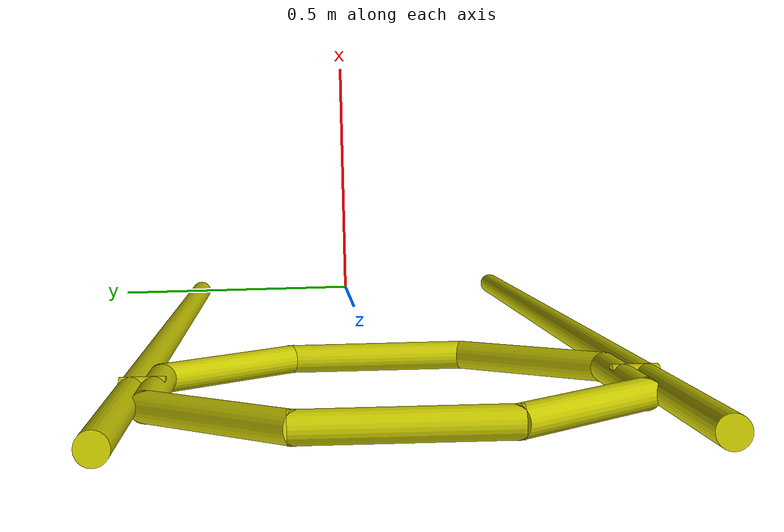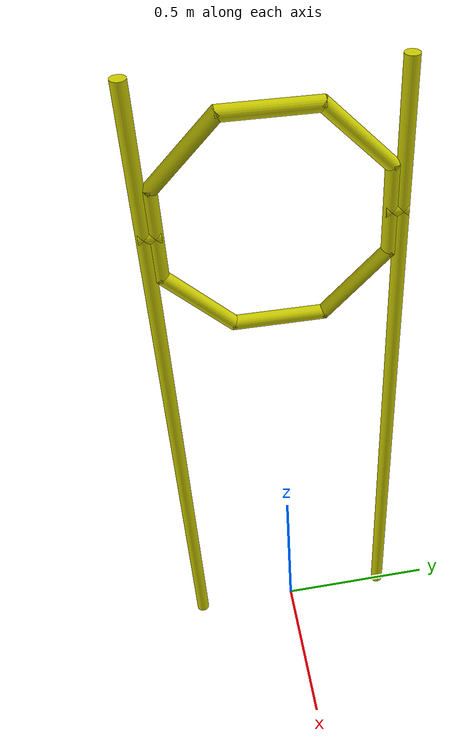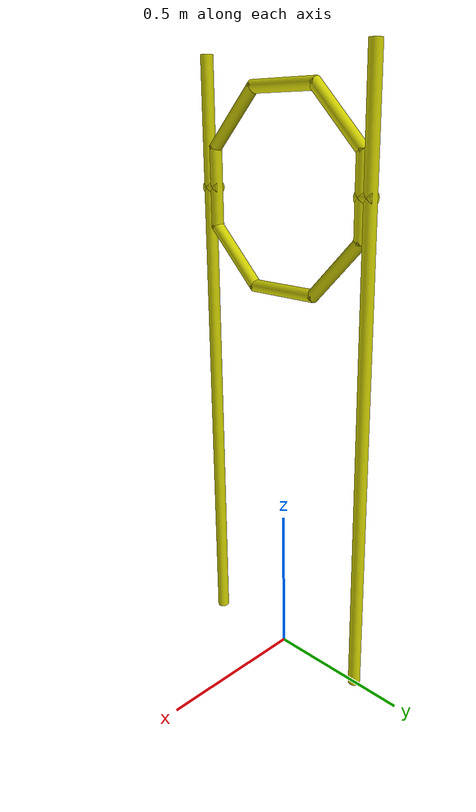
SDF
<?xml version="1.0" ?>
<sdf version="1.6">
  <model name="ring_obstacle">
    <static>true</static>
    <link name="link">

      <!-- Left Pole. Pos: y=-0.33, z=1.0 -->
      <visual name="left_pole_v">
        <pose>0 -0.33 1.0 0 0 0</pose>
        <geometry><cylinder><radius>0.02</radius><length>2.0</length></cylinder></geometry>
        <material><ambient>0.8 0.8 0 1</ambient><diffuse>0.8 0.8 0 1</diffuse></material>
      </visual>
      <collision name="left_pole_c">
        <pose>0 -0.33 1.0 0 0 0</pose>
        <geometry><cylinder><radius>0.02</radius><length>2.0</length></cylinder></geometry>
      </collision>

      <!-- Right Pole. Pos: y=0.33, z=1.0 -->
      <visual name="right_pole_v">
        <pose>0 0.33 1.0 0 0 0</pose>
        <geometry><cylinder><radius>0.02</radius><length>2.0</length></cylinder></geometry>
        <material><ambient>0.8 0.8 0 1</ambient><diffuse>0.8 0.8 0 1</diffuse></material>
      </visual>
      <collision name="right_pole_c">
        <pose>0 0.33 1.0 0 0 0</pose>
        <geometry><cylinder><radius>0.02</radius><length>2.0</length></cylinder></geometry>
      </collision>

      <!-- Left Connector. Pos: y=-0.315, z=1.6 -->
      <visual name="left_conn_v">
        <pose>0 -0.315 1.6 1.5707963 0 0</pose>
        <geometry><cylinder><radius>0.02</radius><length>0.06</length></cylinder></geometry>
        <material><ambient>0.8 0.8 0 1</ambient><diffuse>0.8 0.8 0 1</diffuse></material>
      </visual>
      <collision name="left_conn_c">
        <pose>0 -0.315 1.6 1.5707963 0 0</pose>
        <geometry><cylinder><radius>0.02</radius><length>0.06</length></cylinder></geometry>
      </collision>

      <!-- Right Connector. Pos: y=0.315, z=1.6 -->
      <visual name="right_conn_v">
        <pose>0 0.315 1.6 1.5707963 0 0</pose>
        <geometry><cylinder><radius>0.02</radius><length>0.06</length></cylinder></geometry>
        <material><ambient>0.8 0.8 0 1</ambient><diffuse>0.8 0.8 0 1</diffuse></material>
      </visual>
      <collision name="right_conn_c">
        <pose>0 0.315 1.6 1.5707963 0 0</pose>
        <geometry><cylinder><radius>0.02</radius><length>0.06</length></cylinder></geometry>
      </collision>

      <!-- Ring Segment: Top -->
      <visual name="seg_top_v">
        <pose>0 0 1.90 1.5707963 0 0</pose>
        <geometry><cylinder><radius>0.02</radius><length>0.26</length></cylinder></geometry>
        <material><ambient>0.8 0.8 0 1</ambient><diffuse>0.8 0.8 0 1</diffuse></material>
      </visual>
      <collision name="seg_top_c">
        <pose>0 0 1.90 1.5707963 0 0</pose>
        <geometry><cylinder><radius>0.02</radius><length>0.26</length></cylinder></geometry>
      </collision>

      <!-- Ring Segment: Bottom -->
      <visual name="seg_bot_v">
        <pose>0 0 1.30 1.5707963 0 0</pose>
        <geometry><cylinder><radius>0.02</radius><length>0.26</length></cylinder></geometry>
        <material><ambient>0.8 0.8 0 1</ambient><diffuse>0.8 0.8 0 1</diffuse></material>
      </visual>
      <collision name="seg_bot_c">
        <pose>0 0 1.30 1.5707963 0 0</pose>
        <geometry><cylinder><radius>0.02</radius><length>0.26</length></cylinder></geometry>
      </collision>

      <!-- Ring Segment: Left -->
      <visual name="seg_left_v">
        <pose>0 -0.30 1.60 0 0 0</pose>
        <geometry><cylinder><radius>0.02</radius><length>0.26</length></cylinder></geometry>
        <material><ambient>0.8 0.8 0 1</ambient><diffuse>0.8 0.8 0 1</diffuse></material>
      </visual>
      <collision name="seg_left_c">
        <pose>0 -0.30 1.60 0 0 0</pose>
        <geometry><cylinder><radius>0.02</radius><length>0.26</length></cylinder></geometry>
      </collision>

      <!-- Ring Segment: Right -->
      <visual name="seg_right_v">
        <pose>0 0.30 1.60 0 0 0</pose>
        <geometry><cylinder><radius>0.02</radius><length>0.26</length></cylinder></geometry>
        <material><ambient>0.8 0.8 0 1</ambient><diffuse>0.8 0.8 0 1</diffuse></material>
      </visual>
      <collision name="seg_right_c">
        <pose>0 0.30 1.60 0 0 0</pose>
        <geometry><cylinder><radius>0.02</radius><length>0.26</length></cylinder></geometry>
      </collision>

      <!-- Ring Segment: Top-Left (Slope +1 -> -45 deg) -->
      <visual name="seg_tl_v">
        <pose>0 -0.212 1.812 -0.785398 0 0</pose>
        <geometry><cylinder><radius>0.02</radius><length>0.26</length></cylinder></geometry>
        <material><ambient>0.8 0.8 0 1</ambient><diffuse>0.8 0.8 0 1</diffuse></material>
      </visual>
      <collision name="seg_tl_c">
        <pose>0 -0.212 1.812 -0.785398 0 0</pose>
        <geometry><cylinder><radius>0.02</radius><length>0.26</length></cylinder></geometry>
      </collision>

      <!-- Ring Segment: Bottom-Right (Slope +1 -> -45 deg) -->
      <visual name="seg_br_v">
        <pose>0 0.212 1.388 -0.785398 0 0</pose>
        <geometry><cylinder><radius>0.02</radius><length>0.26</length></cylinder></geometry>
        <material><ambient>0.8 0.8 0 1</ambient><diffuse>0.8 0.8 0 1</diffuse></material>
      </visual>
      <collision name="seg_br_c">
        <pose>0 0.212 1.388 -0.785398 0 0</pose>
        <geometry><cylinder><radius>0.02</radius><length>0.26</length></cylinder></geometry>
      </collision>

      <!-- Ring Segment: Top-Right (Slope -1 -> 45 deg) -->
      <visual name="seg_tr_v">
        <pose>0 0.212 1.812 0.785398 0 0</pose>
        <geometry><cylinder><radius>0.02</radius><length>0.26</length></cylinder></geometry>
        <material><ambient>0.8 0.8 0 1</ambient><diffuse>0.8 0.8 0 1</diffuse></material>
      </visual>
      <collision name="seg_tr_c">
        <pose>0 0.212 1.812 0.785398 0 0</pose>
        <geometry><cylinder><radius>0.02</radius><length>0.26</length></cylinder></geometry>
      </collision>

      <!-- Ring Segment: Bottom-Left (Slope -1 -> 45 deg) -->
      <visual name="seg_bl_v">
        <pose>0 -0.212 1.388 0.785398 0 0</pose>
        <geometry><cylinder><radius>0.02</radius><length>0.26</length></cylinder></geometry>
        <material><ambient>0.8 0.8 0 1</ambient><diffuse>0.8 0.8 0 1</diffuse></material>
      </visual>
      <collision name="seg_bl_c">
        <pose>0 -0.212 1.388 0.785398 0 0</pose>
        <geometry><cylinder><radius>0.02</radius><length>0.26</length></cylinder></geometry>
      </collision>

    </link>
  </model>
</sdf>
